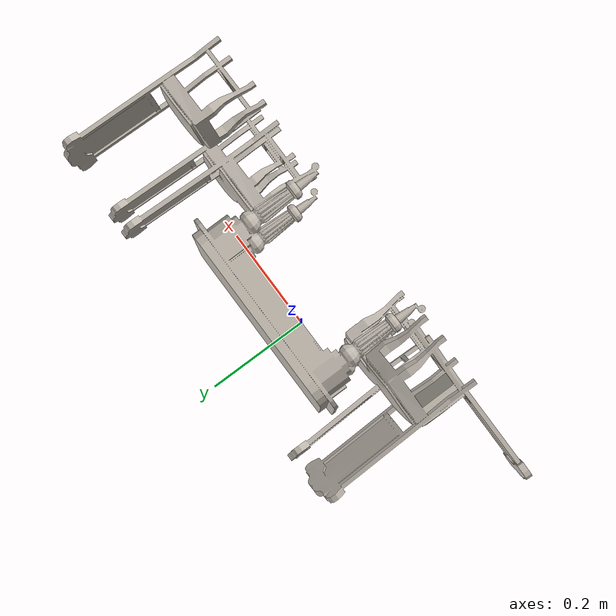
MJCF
<?xml version="1.0" ?>
<mujoco model="3d89401bfcdc482c990d2b9536dc3c6d">
  <asset>
    <texture type="2d" name="material_0" file="material_0.png"/>
    <material name="material_0" texture="material_0" specular="0.4000000000000001" shininess="0.001"/>
    <mesh file="3d89401bfcdc482c990d2b9536dc3c6d/3d89401bfcdc482c990d2b9536dc3c6d.obj" scale="0.14608977794980965 0.14608977794980965 0.14608977794980965"/>
    <mesh file="3d89401bfcdc482c990d2b9536dc3c6d/3d89401bfcdc482c990d2b9536dc3c6d_collision_0.obj" scale="0.14608977794980965 0.14608977794980965 0.14608977794980965"/>
    <mesh file="3d89401bfcdc482c990d2b9536dc3c6d/3d89401bfcdc482c990d2b9536dc3c6d_collision_1.obj" scale="0.14608977794980965 0.14608977794980965 0.14608977794980965"/>
    <mesh file="3d89401bfcdc482c990d2b9536dc3c6d/3d89401bfcdc482c990d2b9536dc3c6d_collision_2.obj" scale="0.14608977794980965 0.14608977794980965 0.14608977794980965"/>
    <mesh file="3d89401bfcdc482c990d2b9536dc3c6d/3d89401bfcdc482c990d2b9536dc3c6d_collision_3.obj" scale="0.14608977794980965 0.14608977794980965 0.14608977794980965"/>
    <mesh file="3d89401bfcdc482c990d2b9536dc3c6d/3d89401bfcdc482c990d2b9536dc3c6d_collision_4.obj" scale="0.14608977794980965 0.14608977794980965 0.14608977794980965"/>
    <mesh file="3d89401bfcdc482c990d2b9536dc3c6d/3d89401bfcdc482c990d2b9536dc3c6d_collision_5.obj" scale="0.14608977794980965 0.14608977794980965 0.14608977794980965"/>
    <mesh file="3d89401bfcdc482c990d2b9536dc3c6d/3d89401bfcdc482c990d2b9536dc3c6d_collision_6.obj" scale="0.14608977794980965 0.14608977794980965 0.14608977794980965"/>
    <mesh file="3d89401bfcdc482c990d2b9536dc3c6d/3d89401bfcdc482c990d2b9536dc3c6d_collision_7.obj" scale="0.14608977794980965 0.14608977794980965 0.14608977794980965"/>
    <mesh file="3d89401bfcdc482c990d2b9536dc3c6d/3d89401bfcdc482c990d2b9536dc3c6d_collision_8.obj" scale="0.14608977794980965 0.14608977794980965 0.14608977794980965"/>
    <mesh file="3d89401bfcdc482c990d2b9536dc3c6d/3d89401bfcdc482c990d2b9536dc3c6d_collision_9.obj" scale="0.14608977794980965 0.14608977794980965 0.14608977794980965"/>
    <mesh file="3d89401bfcdc482c990d2b9536dc3c6d/3d89401bfcdc482c990d2b9536dc3c6d_collision_10.obj" scale="0.14608977794980965 0.14608977794980965 0.14608977794980965"/>
    <mesh file="3d89401bfcdc482c990d2b9536dc3c6d/3d89401bfcdc482c990d2b9536dc3c6d_collision_11.obj" scale="0.14608977794980965 0.14608977794980965 0.14608977794980965"/>
    <mesh file="3d89401bfcdc482c990d2b9536dc3c6d/3d89401bfcdc482c990d2b9536dc3c6d_collision_12.obj" scale="0.14608977794980965 0.14608977794980965 0.14608977794980965"/>
    <mesh file="3d89401bfcdc482c990d2b9536dc3c6d/3d89401bfcdc482c990d2b9536dc3c6d_collision_13.obj" scale="0.14608977794980965 0.14608977794980965 0.14608977794980965"/>
    <mesh file="3d89401bfcdc482c990d2b9536dc3c6d/3d89401bfcdc482c990d2b9536dc3c6d_collision_14.obj" scale="0.14608977794980965 0.14608977794980965 0.14608977794980965"/>
    <mesh file="3d89401bfcdc482c990d2b9536dc3c6d/3d89401bfcdc482c990d2b9536dc3c6d_collision_15.obj" scale="0.14608977794980965 0.14608977794980965 0.14608977794980965"/>
    <mesh file="3d89401bfcdc482c990d2b9536dc3c6d/3d89401bfcdc482c990d2b9536dc3c6d_collision_16.obj" scale="0.14608977794980965 0.14608977794980965 0.14608977794980965"/>
    <mesh file="3d89401bfcdc482c990d2b9536dc3c6d/3d89401bfcdc482c990d2b9536dc3c6d_collision_17.obj" scale="0.14608977794980965 0.14608977794980965 0.14608977794980965"/>
    <mesh file="3d89401bfcdc482c990d2b9536dc3c6d/3d89401bfcdc482c990d2b9536dc3c6d_collision_18.obj" scale="0.14608977794980965 0.14608977794980965 0.14608977794980965"/>
    <mesh file="3d89401bfcdc482c990d2b9536dc3c6d/3d89401bfcdc482c990d2b9536dc3c6d_collision_19.obj" scale="0.14608977794980965 0.14608977794980965 0.14608977794980965"/>
    <mesh file="3d89401bfcdc482c990d2b9536dc3c6d/3d89401bfcdc482c990d2b9536dc3c6d_collision_20.obj" scale="0.14608977794980965 0.14608977794980965 0.14608977794980965"/>
    <mesh file="3d89401bfcdc482c990d2b9536dc3c6d/3d89401bfcdc482c990d2b9536dc3c6d_collision_21.obj" scale="0.14608977794980965 0.14608977794980965 0.14608977794980965"/>
    <mesh file="3d89401bfcdc482c990d2b9536dc3c6d/3d89401bfcdc482c990d2b9536dc3c6d_collision_22.obj" scale="0.14608977794980965 0.14608977794980965 0.14608977794980965"/>
    <mesh file="3d89401bfcdc482c990d2b9536dc3c6d/3d89401bfcdc482c990d2b9536dc3c6d_collision_23.obj" scale="0.14608977794980965 0.14608977794980965 0.14608977794980965"/>
    <mesh file="3d89401bfcdc482c990d2b9536dc3c6d/3d89401bfcdc482c990d2b9536dc3c6d_collision_24.obj" scale="0.14608977794980965 0.14608977794980965 0.14608977794980965"/>
    <mesh file="3d89401bfcdc482c990d2b9536dc3c6d/3d89401bfcdc482c990d2b9536dc3c6d_collision_25.obj" scale="0.14608977794980965 0.14608977794980965 0.14608977794980965"/>
    <mesh file="3d89401bfcdc482c990d2b9536dc3c6d/3d89401bfcdc482c990d2b9536dc3c6d_collision_26.obj" scale="0.14608977794980965 0.14608977794980965 0.14608977794980965"/>
    <mesh file="3d89401bfcdc482c990d2b9536dc3c6d/3d89401bfcdc482c990d2b9536dc3c6d_collision_27.obj" scale="0.14608977794980965 0.14608977794980965 0.14608977794980965"/>
    <mesh file="3d89401bfcdc482c990d2b9536dc3c6d/3d89401bfcdc482c990d2b9536dc3c6d_collision_28.obj" scale="0.14608977794980965 0.14608977794980965 0.14608977794980965"/>
    <mesh file="3d89401bfcdc482c990d2b9536dc3c6d/3d89401bfcdc482c990d2b9536dc3c6d_collision_29.obj" scale="0.14608977794980965 0.14608977794980965 0.14608977794980965"/>
    <mesh file="3d89401bfcdc482c990d2b9536dc3c6d/3d89401bfcdc482c990d2b9536dc3c6d_collision_30.obj" scale="0.14608977794980965 0.14608977794980965 0.14608977794980965"/>
    <mesh file="3d89401bfcdc482c990d2b9536dc3c6d/3d89401bfcdc482c990d2b9536dc3c6d_collision_31.obj" scale="0.14608977794980965 0.14608977794980965 0.14608977794980965"/>
    <mesh file="3d89401bfcdc482c990d2b9536dc3c6d/3d89401bfcdc482c990d2b9536dc3c6d_collision_32.obj" scale="0.14608977794980965 0.14608977794980965 0.14608977794980965"/>
    <mesh file="3d89401bfcdc482c990d2b9536dc3c6d/3d89401bfcdc482c990d2b9536dc3c6d_collision_33.obj" scale="0.14608977794980965 0.14608977794980965 0.14608977794980965"/>
    <mesh file="3d89401bfcdc482c990d2b9536dc3c6d/3d89401bfcdc482c990d2b9536dc3c6d_collision_34.obj" scale="0.14608977794980965 0.14608977794980965 0.14608977794980965"/>
    <mesh file="3d89401bfcdc482c990d2b9536dc3c6d/3d89401bfcdc482c990d2b9536dc3c6d_collision_35.obj" scale="0.14608977794980965 0.14608977794980965 0.14608977794980965"/>
    <mesh file="3d89401bfcdc482c990d2b9536dc3c6d/3d89401bfcdc482c990d2b9536dc3c6d_collision_36.obj" scale="0.14608977794980965 0.14608977794980965 0.14608977794980965"/>
    <mesh file="3d89401bfcdc482c990d2b9536dc3c6d/3d89401bfcdc482c990d2b9536dc3c6d_collision_37.obj" scale="0.14608977794980965 0.14608977794980965 0.14608977794980965"/>
    <mesh file="3d89401bfcdc482c990d2b9536dc3c6d/3d89401bfcdc482c990d2b9536dc3c6d_collision_38.obj" scale="0.14608977794980965 0.14608977794980965 0.14608977794980965"/>
    <mesh file="3d89401bfcdc482c990d2b9536dc3c6d/3d89401bfcdc482c990d2b9536dc3c6d_collision_39.obj" scale="0.14608977794980965 0.14608977794980965 0.14608977794980965"/>
    <mesh file="3d89401bfcdc482c990d2b9536dc3c6d/3d89401bfcdc482c990d2b9536dc3c6d_collision_40.obj" scale="0.14608977794980965 0.14608977794980965 0.14608977794980965"/>
    <mesh file="3d89401bfcdc482c990d2b9536dc3c6d/3d89401bfcdc482c990d2b9536dc3c6d_collision_41.obj" scale="0.14608977794980965 0.14608977794980965 0.14608977794980965"/>
    <mesh file="3d89401bfcdc482c990d2b9536dc3c6d/3d89401bfcdc482c990d2b9536dc3c6d_collision_42.obj" scale="0.14608977794980965 0.14608977794980965 0.14608977794980965"/>
    <mesh file="3d89401bfcdc482c990d2b9536dc3c6d/3d89401bfcdc482c990d2b9536dc3c6d_collision_43.obj" scale="0.14608977794980965 0.14608977794980965 0.14608977794980965"/>
    <mesh file="3d89401bfcdc482c990d2b9536dc3c6d/3d89401bfcdc482c990d2b9536dc3c6d_collision_44.obj" scale="0.14608977794980965 0.14608977794980965 0.14608977794980965"/>
    <mesh file="3d89401bfcdc482c990d2b9536dc3c6d/3d89401bfcdc482c990d2b9536dc3c6d_collision_45.obj" scale="0.14608977794980965 0.14608977794980965 0.14608977794980965"/>
    <mesh file="3d89401bfcdc482c990d2b9536dc3c6d/3d89401bfcdc482c990d2b9536dc3c6d_collision_46.obj" scale="0.14608977794980965 0.14608977794980965 0.14608977794980965"/>
    <mesh file="3d89401bfcdc482c990d2b9536dc3c6d/3d89401bfcdc482c990d2b9536dc3c6d_collision_47.obj" scale="0.14608977794980965 0.14608977794980965 0.14608977794980965"/>
    <mesh file="3d89401bfcdc482c990d2b9536dc3c6d/3d89401bfcdc482c990d2b9536dc3c6d_collision_48.obj" scale="0.14608977794980965 0.14608977794980965 0.14608977794980965"/>
    <mesh file="3d89401bfcdc482c990d2b9536dc3c6d/3d89401bfcdc482c990d2b9536dc3c6d_collision_49.obj" scale="0.14608977794980965 0.14608977794980965 0.14608977794980965"/>
    <mesh file="3d89401bfcdc482c990d2b9536dc3c6d/3d89401bfcdc482c990d2b9536dc3c6d_collision_50.obj" scale="0.14608977794980965 0.14608977794980965 0.14608977794980965"/>
    <mesh file="3d89401bfcdc482c990d2b9536dc3c6d/3d89401bfcdc482c990d2b9536dc3c6d_collision_51.obj" scale="0.14608977794980965 0.14608977794980965 0.14608977794980965"/>
    <mesh file="3d89401bfcdc482c990d2b9536dc3c6d/3d89401bfcdc482c990d2b9536dc3c6d_collision_52.obj" scale="0.14608977794980965 0.14608977794980965 0.14608977794980965"/>
    <mesh file="3d89401bfcdc482c990d2b9536dc3c6d/3d89401bfcdc482c990d2b9536dc3c6d_collision_53.obj" scale="0.14608977794980965 0.14608977794980965 0.14608977794980965"/>
    <mesh file="3d89401bfcdc482c990d2b9536dc3c6d/3d89401bfcdc482c990d2b9536dc3c6d_collision_54.obj" scale="0.14608977794980965 0.14608977794980965 0.14608977794980965"/>
    <mesh file="3d89401bfcdc482c990d2b9536dc3c6d/3d89401bfcdc482c990d2b9536dc3c6d_collision_55.obj" scale="0.14608977794980965 0.14608977794980965 0.14608977794980965"/>
    <mesh file="3d89401bfcdc482c990d2b9536dc3c6d/3d89401bfcdc482c990d2b9536dc3c6d_collision_56.obj" scale="0.14608977794980965 0.14608977794980965 0.14608977794980965"/>
    <mesh file="3d89401bfcdc482c990d2b9536dc3c6d/3d89401bfcdc482c990d2b9536dc3c6d_collision_57.obj" scale="0.14608977794980965 0.14608977794980965 0.14608977794980965"/>
    <mesh file="3d89401bfcdc482c990d2b9536dc3c6d/3d89401bfcdc482c990d2b9536dc3c6d_collision_58.obj" scale="0.14608977794980965 0.14608977794980965 0.14608977794980965"/>
    <mesh file="3d89401bfcdc482c990d2b9536dc3c6d/3d89401bfcdc482c990d2b9536dc3c6d_collision_59.obj" scale="0.14608977794980965 0.14608977794980965 0.14608977794980965"/>
    <mesh file="3d89401bfcdc482c990d2b9536dc3c6d/3d89401bfcdc482c990d2b9536dc3c6d_collision_60.obj" scale="0.14608977794980965 0.14608977794980965 0.14608977794980965"/>
    <mesh file="3d89401bfcdc482c990d2b9536dc3c6d/3d89401bfcdc482c990d2b9536dc3c6d_collision_61.obj" scale="0.14608977794980965 0.14608977794980965 0.14608977794980965"/>
    <mesh file="3d89401bfcdc482c990d2b9536dc3c6d/3d89401bfcdc482c990d2b9536dc3c6d_collision_62.obj" scale="0.14608977794980965 0.14608977794980965 0.14608977794980965"/>
    <mesh file="3d89401bfcdc482c990d2b9536dc3c6d/3d89401bfcdc482c990d2b9536dc3c6d_collision_63.obj" scale="0.14608977794980965 0.14608977794980965 0.14608977794980965"/>
    <mesh file="3d89401bfcdc482c990d2b9536dc3c6d/3d89401bfcdc482c990d2b9536dc3c6d_collision_64.obj" scale="0.14608977794980965 0.14608977794980965 0.14608977794980965"/>
    <mesh file="3d89401bfcdc482c990d2b9536dc3c6d/3d89401bfcdc482c990d2b9536dc3c6d_collision_65.obj" scale="0.14608977794980965 0.14608977794980965 0.14608977794980965"/>
    <mesh file="3d89401bfcdc482c990d2b9536dc3c6d/3d89401bfcdc482c990d2b9536dc3c6d_collision_66.obj" scale="0.14608977794980965 0.14608977794980965 0.14608977794980965"/>
    <mesh file="3d89401bfcdc482c990d2b9536dc3c6d/3d89401bfcdc482c990d2b9536dc3c6d_collision_67.obj" scale="0.14608977794980965 0.14608977794980965 0.14608977794980965"/>
    <mesh file="3d89401bfcdc482c990d2b9536dc3c6d/3d89401bfcdc482c990d2b9536dc3c6d_collision_68.obj" scale="0.14608977794980965 0.14608977794980965 0.14608977794980965"/>
    <mesh file="3d89401bfcdc482c990d2b9536dc3c6d/3d89401bfcdc482c990d2b9536dc3c6d_collision_69.obj" scale="0.14608977794980965 0.14608977794980965 0.14608977794980965"/>
    <mesh file="3d89401bfcdc482c990d2b9536dc3c6d/3d89401bfcdc482c990d2b9536dc3c6d_collision_70.obj" scale="0.14608977794980965 0.14608977794980965 0.14608977794980965"/>
    <mesh file="3d89401bfcdc482c990d2b9536dc3c6d/3d89401bfcdc482c990d2b9536dc3c6d_collision_71.obj" scale="0.14608977794980965 0.14608977794980965 0.14608977794980965"/>
    <mesh file="3d89401bfcdc482c990d2b9536dc3c6d/3d89401bfcdc482c990d2b9536dc3c6d_collision_72.obj" scale="0.14608977794980965 0.14608977794980965 0.14608977794980965"/>
    <mesh file="3d89401bfcdc482c990d2b9536dc3c6d/3d89401bfcdc482c990d2b9536dc3c6d_collision_73.obj" scale="0.14608977794980965 0.14608977794980965 0.14608977794980965"/>
    <mesh file="3d89401bfcdc482c990d2b9536dc3c6d/3d89401bfcdc482c990d2b9536dc3c6d_collision_74.obj" scale="0.14608977794980965 0.14608977794980965 0.14608977794980965"/>
    <mesh file="3d89401bfcdc482c990d2b9536dc3c6d/3d89401bfcdc482c990d2b9536dc3c6d_collision_75.obj" scale="0.14608977794980965 0.14608977794980965 0.14608977794980965"/>
    <mesh file="3d89401bfcdc482c990d2b9536dc3c6d/3d89401bfcdc482c990d2b9536dc3c6d_collision_76.obj" scale="0.14608977794980965 0.14608977794980965 0.14608977794980965"/>
    <mesh file="3d89401bfcdc482c990d2b9536dc3c6d/3d89401bfcdc482c990d2b9536dc3c6d_collision_77.obj" scale="0.14608977794980965 0.14608977794980965 0.14608977794980965"/>
    <mesh file="3d89401bfcdc482c990d2b9536dc3c6d/3d89401bfcdc482c990d2b9536dc3c6d_collision_78.obj" scale="0.14608977794980965 0.14608977794980965 0.14608977794980965"/>
    <mesh file="3d89401bfcdc482c990d2b9536dc3c6d/3d89401bfcdc482c990d2b9536dc3c6d_collision_79.obj" scale="0.14608977794980965 0.14608977794980965 0.14608977794980965"/>
    <mesh file="3d89401bfcdc482c990d2b9536dc3c6d/3d89401bfcdc482c990d2b9536dc3c6d_collision_80.obj" scale="0.14608977794980965 0.14608977794980965 0.14608977794980965"/>
    <mesh file="3d89401bfcdc482c990d2b9536dc3c6d/3d89401bfcdc482c990d2b9536dc3c6d_collision_81.obj" scale="0.14608977794980965 0.14608977794980965 0.14608977794980965"/>
    <mesh file="3d89401bfcdc482c990d2b9536dc3c6d/3d89401bfcdc482c990d2b9536dc3c6d_collision_82.obj" scale="0.14608977794980965 0.14608977794980965 0.14608977794980965"/>
  </asset>
  <worldbody>
    <body name="3d89401bfcdc482c990d2b9536dc3c6d">
      <inertial pos="0 0 0.3750" mass="0.02" diaginertia="0.001126 0.002466 0.001716"/>
      <geom material="material_0" mesh="3d89401bfcdc482c990d2b9536dc3c6d" class="visual"/>
      <geom mesh="3d89401bfcdc482c990d2b9536dc3c6d_collision_0" rgba="0.9357085884583438 0.254325890644309 0.9216494430648414 1" class="collision"/>
      <geom mesh="3d89401bfcdc482c990d2b9536dc3c6d_collision_1" rgba="0.001307052423258459 0.6898344579135312 0.6612357865253968 1" class="collision"/>
      <geom mesh="3d89401bfcdc482c990d2b9536dc3c6d_collision_2" rgba="0.6048335655317968 0.8923035039184144 0.7523758625660578 1" class="collision"/>
      <geom mesh="3d89401bfcdc482c990d2b9536dc3c6d_collision_3" rgba="0.5139903852355282 0.13951730113909988 0.5914183729659447 1" class="collision"/>
      <geom mesh="3d89401bfcdc482c990d2b9536dc3c6d_collision_4" rgba="0.8770759605734957 0.8374473140335161 0.7318622309564005 1" class="collision"/>
      <geom mesh="3d89401bfcdc482c990d2b9536dc3c6d_collision_5" rgba="0.04109666700055892 0.0764127964820367 0.14806131416619206 1" class="collision"/>
      <geom mesh="3d89401bfcdc482c990d2b9536dc3c6d_collision_6" rgba="0.30720378505315094 0.7130914511637275 0.4183722645283309 1" class="collision"/>
      <geom mesh="3d89401bfcdc482c990d2b9536dc3c6d_collision_7" rgba="0.8442842707726129 0.6641958036282719 0.07807477473329505 1" class="collision"/>
      <geom mesh="3d89401bfcdc482c990d2b9536dc3c6d_collision_8" rgba="0.2001090793701974 0.3174884553137536 0.025482267791762325 1" class="collision"/>
      <geom mesh="3d89401bfcdc482c990d2b9536dc3c6d_collision_9" rgba="0.0316685625026667 0.7224511066889944 0.9402983291547221 1" class="collision"/>
      <geom mesh="3d89401bfcdc482c990d2b9536dc3c6d_collision_10" rgba="0.6840037309328665 0.16839176661509636 0.16097268963452938 1" class="collision"/>
      <geom mesh="3d89401bfcdc482c990d2b9536dc3c6d_collision_11" rgba="0.25713072333308973 0.7855624530830595 0.34559309571733465 1" class="collision"/>
      <geom mesh="3d89401bfcdc482c990d2b9536dc3c6d_collision_12" rgba="0.8454560758109574 0.9912439255130325 0.9761598094479488 1" class="collision"/>
      <geom mesh="3d89401bfcdc482c990d2b9536dc3c6d_collision_13" rgba="0.3914358784295332 0.5389862850362498 0.10306720440518924 1" class="collision"/>
      <geom mesh="3d89401bfcdc482c990d2b9536dc3c6d_collision_14" rgba="0.17900948460127486 0.7207777766061406 0.8173175777044716 1" class="collision"/>
      <geom mesh="3d89401bfcdc482c990d2b9536dc3c6d_collision_15" rgba="0.5934400804123705 0.2711861979940501 0.4728720375276151 1" class="collision"/>
      <geom mesh="3d89401bfcdc482c990d2b9536dc3c6d_collision_16" rgba="0.4130510604979071 0.10318662951173008 0.11616483084609053 1" class="collision"/>
      <geom mesh="3d89401bfcdc482c990d2b9536dc3c6d_collision_17" rgba="0.13596266996022377 0.5901567854992225 0.0669162205671403 1" class="collision"/>
      <geom mesh="3d89401bfcdc482c990d2b9536dc3c6d_collision_18" rgba="0.4226913343739951 0.03191402584131986 0.7940900864711532 1" class="collision"/>
      <geom mesh="3d89401bfcdc482c990d2b9536dc3c6d_collision_19" rgba="0.5613046020158391 0.5069346816274448 0.8826544998534475 1" class="collision"/>
      <geom mesh="3d89401bfcdc482c990d2b9536dc3c6d_collision_20" rgba="0.058091646663743 0.4024039628013779 0.3835358221824674 1" class="collision"/>
      <geom mesh="3d89401bfcdc482c990d2b9536dc3c6d_collision_21" rgba="0.43085260975811257 0.056433069004889425 0.4775825419285693 1" class="collision"/>
      <geom mesh="3d89401bfcdc482c990d2b9536dc3c6d_collision_22" rgba="0.5566890323294649 0.44142178887389194 0.14607332430724462 1" class="collision"/>
      <geom mesh="3d89401bfcdc482c990d2b9536dc3c6d_collision_23" rgba="0.7038575269358581 0.7026769458812202 0.14379386254803772 1" class="collision"/>
      <geom mesh="3d89401bfcdc482c990d2b9536dc3c6d_collision_24" rgba="0.3772159894067125 0.6432297726246364 0.28707219933169814 1" class="collision"/>
      <geom mesh="3d89401bfcdc482c990d2b9536dc3c6d_collision_25" rgba="0.6816074096621493 0.7042043194417568 0.0726072233989582 1" class="collision"/>
      <geom mesh="3d89401bfcdc482c990d2b9536dc3c6d_collision_26" rgba="0.16037672205496978 0.7909484235454423 0.7990125522327559 1" class="collision"/>
      <geom mesh="3d89401bfcdc482c990d2b9536dc3c6d_collision_27" rgba="0.24102068028099166 0.3203009267496765 0.6918836580454515 1" class="collision"/>
      <geom mesh="3d89401bfcdc482c990d2b9536dc3c6d_collision_28" rgba="0.7586386269141241 0.80813792203565 0.6196442692219801 1" class="collision"/>
      <geom mesh="3d89401bfcdc482c990d2b9536dc3c6d_collision_29" rgba="0.15773671447861115 0.8072875615949131 0.9008902728241098 1" class="collision"/>
      <geom mesh="3d89401bfcdc482c990d2b9536dc3c6d_collision_30" rgba="0.357424959259498 0.2821933944283005 0.5272652189523961 1" class="collision"/>
      <geom mesh="3d89401bfcdc482c990d2b9536dc3c6d_collision_31" rgba="0.6923445318118672 0.22102699586844576 0.6481777882955586 1" class="collision"/>
      <geom mesh="3d89401bfcdc482c990d2b9536dc3c6d_collision_32" rgba="0.5986044518548338 0.021543497373136544 0.8471119928539527 1" class="collision"/>
      <geom mesh="3d89401bfcdc482c990d2b9536dc3c6d_collision_33" rgba="0.9241635618606809 0.31981181418627924 0.7566265369952974 1" class="collision"/>
      <geom mesh="3d89401bfcdc482c990d2b9536dc3c6d_collision_34" rgba="0.34472554441468206 0.5631765532990214 0.5012890704609737 1" class="collision"/>
      <geom mesh="3d89401bfcdc482c990d2b9536dc3c6d_collision_35" rgba="0.7042779207976406 0.4841369807738972 0.6424531611294232 1" class="collision"/>
      <geom mesh="3d89401bfcdc482c990d2b9536dc3c6d_collision_36" rgba="0.4069443692377971 0.5151391647531326 0.7557614739243643 1" class="collision"/>
      <geom mesh="3d89401bfcdc482c990d2b9536dc3c6d_collision_37" rgba="0.29119664336613027 0.6400148999521043 0.28928273145310524 1" class="collision"/>
      <geom mesh="3d89401bfcdc482c990d2b9536dc3c6d_collision_38" rgba="0.7013071724536184 0.08793540937151323 0.5687444070310705 1" class="collision"/>
      <geom mesh="3d89401bfcdc482c990d2b9536dc3c6d_collision_39" rgba="0.9579749703387093 0.48520975601279104 0.10584936904313524 1" class="collision"/>
      <geom mesh="3d89401bfcdc482c990d2b9536dc3c6d_collision_40" rgba="0.8739052951136704 0.7489859425351424 0.34248055847041003 1" class="collision"/>
      <geom mesh="3d89401bfcdc482c990d2b9536dc3c6d_collision_41" rgba="0.7793515269416803 0.5347809407501329 0.9335923116174093 1" class="collision"/>
      <geom mesh="3d89401bfcdc482c990d2b9536dc3c6d_collision_42" rgba="0.6710286637449671 0.9319291811465846 0.41373325891299895 1" class="collision"/>
      <geom mesh="3d89401bfcdc482c990d2b9536dc3c6d_collision_43" rgba="0.20931138941949978 0.6629317257421856 0.8494926741763741 1" class="collision"/>
      <geom mesh="3d89401bfcdc482c990d2b9536dc3c6d_collision_44" rgba="0.9591563142858898 0.105314066456216 0.9516176204661841 1" class="collision"/>
      <geom mesh="3d89401bfcdc482c990d2b9536dc3c6d_collision_45" rgba="0.6529650472227413 0.313512947937144 0.874483378629302 1" class="collision"/>
      <geom mesh="3d89401bfcdc482c990d2b9536dc3c6d_collision_46" rgba="0.14930534335025525 0.984964825053 0.5942099536145357 1" class="collision"/>
      <geom mesh="3d89401bfcdc482c990d2b9536dc3c6d_collision_47" rgba="0.9720323897794995 0.28461542710015475 0.6922485245667922 1" class="collision"/>
      <geom mesh="3d89401bfcdc482c990d2b9536dc3c6d_collision_48" rgba="0.02930261172304305 0.2661531408954332 0.4815722740337005 1" class="collision"/>
      <geom mesh="3d89401bfcdc482c990d2b9536dc3c6d_collision_49" rgba="0.27975632108936543 0.23207365064460128 0.8138698615759379 1" class="collision"/>
      <geom mesh="3d89401bfcdc482c990d2b9536dc3c6d_collision_50" rgba="0.23792307798608792 0.18829510564405538 0.10681027302893409 1" class="collision"/>
      <geom mesh="3d89401bfcdc482c990d2b9536dc3c6d_collision_51" rgba="0.8427557828176073 0.8187718502243958 0.7581482987944036 1" class="collision"/>
      <geom mesh="3d89401bfcdc482c990d2b9536dc3c6d_collision_52" rgba="0.16443612688120646 0.6784519038012179 0.0637091299485989 1" class="collision"/>
      <geom mesh="3d89401bfcdc482c990d2b9536dc3c6d_collision_53" rgba="0.6084921664891781 0.05443400514719621 0.7003013349970603 1" class="collision"/>
      <geom mesh="3d89401bfcdc482c990d2b9536dc3c6d_collision_54" rgba="0.06127770556775325 0.0716602864590885 0.9747698243013034 1" class="collision"/>
      <geom mesh="3d89401bfcdc482c990d2b9536dc3c6d_collision_55" rgba="0.9416230448119894 0.4289808068987465 0.18302487693682412 1" class="collision"/>
      <geom mesh="3d89401bfcdc482c990d2b9536dc3c6d_collision_56" rgba="0.6907078633178502 0.20158710911515987 0.9309154254057278 1" class="collision"/>
      <geom mesh="3d89401bfcdc482c990d2b9536dc3c6d_collision_57" rgba="0.391018523258178 0.6871906918712245 0.8463399129818272 1" class="collision"/>
      <geom mesh="3d89401bfcdc482c990d2b9536dc3c6d_collision_58" rgba="0.590600008140097 0.2284218303892902 0.8871027464661386 1" class="collision"/>
      <geom mesh="3d89401bfcdc482c990d2b9536dc3c6d_collision_59" rgba="0.35469714433819555 0.46727311206177247 0.5748906746899024 1" class="collision"/>
      <geom mesh="3d89401bfcdc482c990d2b9536dc3c6d_collision_60" rgba="0.11391869737697569 0.21757940906794382 0.11004063147600185 1" class="collision"/>
      <geom mesh="3d89401bfcdc482c990d2b9536dc3c6d_collision_61" rgba="0.46756618048653875 0.783970588054369 0.7618264302655229 1" class="collision"/>
      <geom mesh="3d89401bfcdc482c990d2b9536dc3c6d_collision_62" rgba="0.004705107030681055 0.22361173121708267 0.5793996604861011 1" class="collision"/>
      <geom mesh="3d89401bfcdc482c990d2b9536dc3c6d_collision_63" rgba="0.3162127022592722 0.05564236466967565 0.5769443890432876 1" class="collision"/>
      <geom mesh="3d89401bfcdc482c990d2b9536dc3c6d_collision_64" rgba="0.6735833515432696 0.011991622099903454 0.11806824604513577 1" class="collision"/>
      <geom mesh="3d89401bfcdc482c990d2b9536dc3c6d_collision_65" rgba="0.7486237517023329 0.12463367799399139 0.08486845540755084 1" class="collision"/>
      <geom mesh="3d89401bfcdc482c990d2b9536dc3c6d_collision_66" rgba="0.8794084909840814 0.23543495313243368 0.40940769345627315 1" class="collision"/>
      <geom mesh="3d89401bfcdc482c990d2b9536dc3c6d_collision_67" rgba="0.5838825356781926 0.32977140031951413 0.8938623416326548 1" class="collision"/>
      <geom mesh="3d89401bfcdc482c990d2b9536dc3c6d_collision_68" rgba="0.5260052159660075 0.5760860613618017 0.7092543069517101 1" class="collision"/>
      <geom mesh="3d89401bfcdc482c990d2b9536dc3c6d_collision_69" rgba="0.41589464029691436 0.7480430895322043 0.9149825965698731 1" class="collision"/>
      <geom mesh="3d89401bfcdc482c990d2b9536dc3c6d_collision_70" rgba="0.047877514940949384 0.21778791594288138 0.7371089164770931 1" class="collision"/>
      <geom mesh="3d89401bfcdc482c990d2b9536dc3c6d_collision_71" rgba="0.4309239377445021 0.620077975859037 0.04995777378428223 1" class="collision"/>
      <geom mesh="3d89401bfcdc482c990d2b9536dc3c6d_collision_72" rgba="0.6696128367869117 0.34567158268145304 0.5713281680786415 1" class="collision"/>
      <geom mesh="3d89401bfcdc482c990d2b9536dc3c6d_collision_73" rgba="0.013558374756986291 0.08702810316170095 0.5539974913210457 1" class="collision"/>
      <geom mesh="3d89401bfcdc482c990d2b9536dc3c6d_collision_74" rgba="0.8020835148432905 0.38516165338950126 0.29144455725219465 1" class="collision"/>
      <geom mesh="3d89401bfcdc482c990d2b9536dc3c6d_collision_75" rgba="0.9758119296633849 0.6507663922337129 0.21559045649574016 1" class="collision"/>
      <geom mesh="3d89401bfcdc482c990d2b9536dc3c6d_collision_76" rgba="0.8786274095713387 0.17099327384885077 0.5300271525088898 1" class="collision"/>
      <geom mesh="3d89401bfcdc482c990d2b9536dc3c6d_collision_77" rgba="0.40000512437284785 0.6237570820924746 0.5342668418931141 1" class="collision"/>
      <geom mesh="3d89401bfcdc482c990d2b9536dc3c6d_collision_78" rgba="0.558092772420745 0.5239021883984561 0.5942861206862711 1" class="collision"/>
      <geom mesh="3d89401bfcdc482c990d2b9536dc3c6d_collision_79" rgba="0.33561354527615417 0.7054092054844333 0.5598561167901038 1" class="collision"/>
      <geom mesh="3d89401bfcdc482c990d2b9536dc3c6d_collision_80" rgba="0.28089329540187213 0.25611953659471154 0.944970735114848 1" class="collision"/>
      <geom mesh="3d89401bfcdc482c990d2b9536dc3c6d_collision_81" rgba="0.4622696650064183 0.890497260993692 0.7826836282457256 1" class="collision"/>
      <geom mesh="3d89401bfcdc482c990d2b9536dc3c6d_collision_82" rgba="0.6891929067737119 0.506821755807381 0.3430076598801495 1" class="collision"/>
      <site class="grasppoint" pos="0 0 0.6000"/>
      <site class="grasppoint" pos="0 0 0.6562"/>
      <site class="grasppoint" pos="0 0 0.7125"/>
        <site name="top_site" pos="0 0 0.1" size="0.01" rgba="1 0 0 0"/>
    <site name="bottom_site" pos="0 0 0.0" size="0.01" rgba="0 1 0 0"/>
    <site name="top_site" pos="0 0 0.1" size="0.01" rgba="1 0 0 0"/>
    <site name="bottom_site" pos="0 0 0.0" size="0.01" rgba="0 1 0 0"/>
    <site name="top_site" pos="0 0 0.1" size="0.01" rgba="1 0 0 0"/>
    <site name="bottom_site" pos="0 0 0.0" size="0.01" rgba="0 1 0 0"/>
    <site name="top_site" pos="0 0 0.1" size="0.01" rgba="1 0 0 0"/>
    <site name="bottom_site" pos="0 0 0.0" size="0.01" rgba="0 1 0 0"/>
    <site name="top_site" pos="0 0 0.1" size="0.01" rgba="1 0 0 0"/>
    <site name="bottom_site" pos="0 0 0.0" size="0.01" rgba="0 1 0 0"/>
    <site name="top_site" pos="0 0 0.1" size="0.01" rgba="1 0 0 0"/>
    <site name="bottom_site" pos="0 0 0.0" size="0.01" rgba="0 1 0 0"/>
    <site name="top_site" pos="0 0 0.1" size="0.01" rgba="1 0 0 0"/>
    <site name="bottom_site" pos="0 0 0.0" size="0.01" rgba="0 1 0 0"/>
    <site name="top_site" pos="0 0 0.1" size="0.01" rgba="1 0 0 0"/>
    <site name="bottom_site" pos="0 0 0.0" size="0.01" rgba="0 1 0 0"/>
    <site name="top_site" pos="0 0 0.1" size="0.01" rgba="1 0 0 0"/>
    <site name="bottom_site" pos="0 0 0.0" size="0.01" rgba="0 1 0 0"/>
    <site name="top_site" pos="0 0 0.1" size="0.01" rgba="1 0 0 0"/>
    <site name="bottom_site" pos="0 0 0.0" size="0.01" rgba="0 1 0 0"/>
    <site name="top_site" pos="0 0 0.1" size="0.01" rgba="1 0 0 0"/>
    <site name="bottom_site" pos="0 0 0.0" size="0.01" rgba="0 1 0 0"/>
    <site name="top_site" pos="0 0 0.1" size="0.01" rgba="1 0 0 0"/>
    <site name="bottom_site" pos="0 0 0.0" size="0.01" rgba="0 1 0 0"/>
</body>
  </worldbody>
  <compiler boundmass="0.015" boundinertia="1e-05" angle="radian"/>
  <default>
    <default class="visual">
      <geom group="2" type="mesh" contype="0" conaffinity="0" density="50"/>
    </default>
    <default class="collision">
      <geom group="3" type="mesh" density="50" friction="1.5 0.1 0.1" solimp="0.9 0.95 0.001" solref="0.02 1"/>
    </default>
    <default class="grasppoint">
      <site type="sphere" size="0.005" group="4" rgba="0 0 1 1"/>
    </default>
  </default>
</mujoco>
